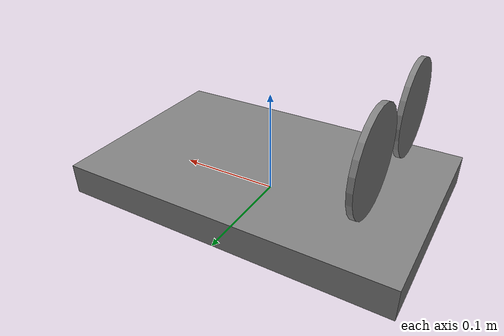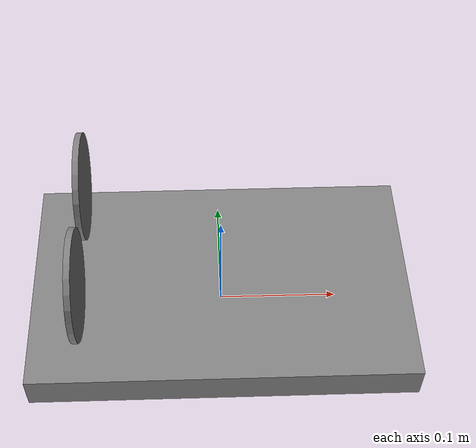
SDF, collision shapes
<?xml version="1.0"?>
<sdf version="1.9">
  <model name="hovercraft">
    <link name="base_link">
      <pose>0 0 0 0 0 0</pose>
      <inertial>
        <pose>0 0 0 0 0 0</pose>
        <mass>0.7</mass>
        <inertia>
          <ixx>0.002356667</ixx>
          <ixy>0</ixy>
          <ixz>0</ixz>
          <iyy>0.005996667</iyy>
          <iyz>0</iyz>
          <izz>0.008306667</izz>
        </inertia>
      </inertial>
      <collision name="collision">
        <pose>0 0 0.015 0 0 0</pose>
        <geometry>
          <box>
            <size>0.32 0.2 0.03</size>
          </box>
        </geometry>
        <surface>
          <friction>
            <ode>
              <mu>0.1</mu>
              <mu2>0.1</mu2>
            </ode>
          </friction>
        </surface>
      </collision>
      <visual name="visual">
        <pose>0 0 0 0 0 0</pose>
        <geometry>
        <mesh>
            <uri>models://hovercraft/meshes/hovercraft.dae</uri>
          </mesh>
        </geometry>
        <material>
          <ambient>0.5 0.5 0.5</ambient>
          <diffuse>0.5 0.5 0.5</diffuse>
          <specular>0.1 0.1 0.1</specular>
          <pbr>
            <metal>
              <metalness>0.2</metalness>
              <roughness>0.2</roughness>
            </metal>
          </pbr>
        </material>
      </visual>

      <sensor name="imu_sensor" type="imu">
        <pose degrees="true">0 0 0 180 0 0</pose>
        <always_on>1</always_on>
        <update_rate>1000.0</update_rate>
      </sensor>

    </link>

    <link name="motor_left_link">
      <pose relative_to="motor_left_joint">0 0 0.008 0 0 0</pose>
      <inertial>
        <pose>0 0 0 0 0 0</pose>
        <mass>0.025</mass>
        <inertia>
          <ixx>9.75e-06</ixx>
          <ixy>0</ixy>
          <ixz>0</ixz>
          <iyy>0.000166704</iyy>
          <iyz>0</iyz>
          <izz>0.000167604</izz>
        </inertia>
      </inertial>
      <collision name="prop_collision">
        <pose>0 0 0.0095 0 0 0</pose>
        <geometry>
          <cylinder>
            <radius>0.045</radius>
            <length>0.005</length>
          </cylinder>
        </geometry>
      </collision>
      <visual name="motor_visual">
        <geometry>
          <cylinder>
            <radius>0.01</radius>
            <length>0.01</length>
          </cylinder>
        </geometry>
        <material>
          <ambient>0.5 0.5 0.5</ambient>
          <diffuse>0.5 0.5 0.5</diffuse>
          <specular>0.5 0.5 0.5</specular>
          <pbr>
            <metal>
              <roughness>0.5</roughness>
              <metalness>0.4</metalness>
            </metal>
          </pbr>
        </material>
      </visual>
      <visual name="prop_visual">
        <pose>0 0 0.0095 0 0 0</pose>
        <geometry>
          <mesh>
            <scale>0.0007 0.0007 0.0007</scale>
            <uri>model://hovercraft/meshes/prop_triblade_5045_cw.dae</uri>
          </mesh>
        </geometry>
        <material>
          <ambient>0 1 0</ambient>
          <diffuse>0 1 0</diffuse>
          <specular>0.5 0.5 0.5</specular>
          <pbr>
            <metal>
              <roughness>0.5</roughness>
              <metalness>0.4</metalness>
            </metal>
          </pbr>
        </material>
      </visual>
    </link>
    <joint name="motor_left_joint" type="revolute">
      <pose relative_to="base_link" degrees="true">-0.132 0.0507 0.0935 0 90 0</pose>
      <parent>base_link</parent>
      <child>motor_left_link</child>
      <axis>
        <xyz>0 0 1</xyz>
        <limit>
          <lower>-1e16</lower>
          <upper>1e16</upper>
        </limit>
        <dynamics>
          <damping>0.002</damping>
        </dynamics>
        <use_parent_model_frame>1</use_parent_model_frame>
      </axis>
    </joint>

    <link name="motor_right_link">
      <pose relative_to="motor_right_joint">0 0 0.008 0 0 0</pose>
      <inertial>
        <pose>0 0 0 0 0 0</pose>
        <mass>0.025</mass>
        <inertia>
          <ixx>9.75e-06</ixx>
          <ixy>0</ixy>
          <ixz>0</ixz>
          <iyy>0.000166704</iyy>
          <iyz>0</iyz>
          <izz>0.000167604</izz>
        </inertia>
      </inertial>
      <collision name="prop_collision">
        <pose>0 0 0.0095 0 0 0</pose>
        <geometry>
          <cylinder>
            <radius>0.045</radius>
            <length>0.005</length>
          </cylinder>
        </geometry>
      </collision>
      <visual name="motor_visual">
        <geometry>
          <cylinder>
            <radius>0.01</radius>
            <length>0.01</length>
          </cylinder>
        </geometry>
        <material>
          <ambient>0.5 0.5 0.5</ambient>
          <diffuse>0.5 0.5 0.5</diffuse>
          <specular>0.5 0.5 0.5</specular>
          <pbr>
            <metal>
              <roughness>0.5</roughness>
              <metalness>0.4</metalness>
            </metal>
          </pbr>
        </material>
      </visual>
      <visual name="prop_visual">
        <pose>0 0 0.0095 0 0 0</pose>
        <geometry>
          <mesh>
            <scale>0.0007 0.0007 0.0007</scale>
            <uri>model://hovercraft/meshes/prop_triblade_5045_ccw.dae</uri>
          </mesh>
        </geometry>
        <material>
          <ambient>0 0 1</ambient>
          <diffuse>0 0 1</diffuse>
          <specular>0.5 0.5 0.5</specular>
          <pbr>
            <metal>
              <roughness>0.5</roughness>
              <metalness>0.4</metalness>
            </metal>
          </pbr>
        </material>
      </visual>
    </link>
    <joint name="motor_right_joint" type="revolute">
      <pose relative_to="base_link" degrees="true">-0.132 -0.0507 0.0935 0 90 0</pose>
      <parent>base_link</parent>
      <child>motor_right_link</child>
      <axis>
        <xyz>0 0 1</xyz>
        <limit>
          <lower>-1e16</lower>
          <upper>1e16</upper>
        </limit>
        <dynamics>
          <damping>0.002</damping>
        </dynamics>
        <use_parent_model_frame>1</use_parent_model_frame>
      </axis>
    </joint>

    <link name="motor_front_link">
      <pose relative_to="motor_front_joint">0 0 0.008 0 0 0</pose>
      <inertial>
        <pose>0 0 0 0 0 0</pose>
        <mass>0.025</mass>
        <inertia>
          <ixx>9.75e-06</ixx>
          <ixy>0</ixy>
          <ixz>0</ixz>
          <iyy>0.000166704</iyy>
          <iyz>0</iyz>
          <izz>0.000167604</izz>
        </inertia>
      </inertial>
      <collision name="prop_collision">
        <pose>0 0 0.0095 0 0 0</pose>
        <geometry>
          <cylinder>
            <radius>0.045</radius>
            <length>0.005</length>
          </cylinder>
        </geometry>
      </collision>
      <visual name="motor_visual">
        <geometry>
          <cylinder>
            <radius>0.01</radius>
            <length>0.01</length>
          </cylinder>
        </geometry>
        <material>
          <ambient>0.5 0.5 0.5</ambient>
          <diffuse>0.5 0.5 0.5</diffuse>
          <specular>0.5 0.5 0.5</specular>
          <pbr>
            <metal>
              <roughness>0.5</roughness>
              <metalness>0.4</metalness>
            </metal>
          </pbr>
        </material>
      </visual>
      <visual name="prop_visual">
        <pose>0 0 0.0095 0 0 0</pose>
        <geometry>
          <mesh>
            <scale>0.0007 0.0007 0.0007</scale>
            <uri>model://hovercraft/meshes/prop_triblade_5045_ccw.dae</uri>
          </mesh>
        </geometry>
        <material>
          <ambient>0 0 1</ambient>
          <diffuse>0 0 1</diffuse>
          <specular>0.5 0.5 0.5</specular>
          <pbr>
            <metal>
              <roughness>0.5</roughness>
              <metalness>0.4</metalness>
            </metal>
          </pbr>
        </material>
      </visual>
    </link>
    <joint name="motor_front_joint" type="revolute">
      <pose relative_to="base_link" degrees="true">0.067 0.0 0.009 0 0 0</pose>
      <parent>base_link</parent>
      <child>motor_front_link</child>
      <axis>
        <xyz>0 0 1</xyz>
        <limit>
          <lower>-1e16</lower>
          <upper>1e16</upper>
        </limit>
        <dynamics>
          <damping>0.002</damping>
        </dynamics>
        <use_parent_model_frame>1</use_parent_model_frame>
      </axis>
    </joint>

    <link name="motor_back_link">
      <pose relative_to="motor_back_joint">0 0 0.008 0 0 0</pose>
      <inertial>
        <pose>0 0 0 0 0 0</pose>
        <mass>0.025</mass>
        <inertia>
          <ixx>9.75e-06</ixx>
          <ixy>0</ixy>
          <ixz>0</ixz>
          <iyy>0.000166704</iyy>
          <iyz>0</iyz>
          <izz>0.000167604</izz>
        </inertia>
      </inertial>
      <collision name="prop_collision">
        <pose>0 0 0.0095 0 0 0</pose>
        <geometry>
          <cylinder>
            <radius>0.045</radius>
            <length>0.005</length>
          </cylinder>
        </geometry>
      </collision>
      <visual name="motor_visual">
        <geometry>
          <cylinder>
            <radius>0.01</radius>
            <length>0.01</length>
          </cylinder>
        </geometry>
        <material>
          <ambient>0.5 0.5 0.5</ambient>
          <diffuse>0.5 0.5 0.5</diffuse>
          <specular>0.5 0.5 0.5</specular>
          <pbr>
            <metal>
              <roughness>0.5</roughness>
              <metalness>0.4</metalness>
            </metal>
          </pbr>
        </material>
      </visual>
      <visual name="prop_visual">
        <pose>0 0 0.0095 0 0 0</pose>
        <geometry>
          <mesh>
            <scale>0.0007 0.0007 0.0007</scale>
            <uri>model://hovercraft/meshes/prop_triblade_5045_cw.dae</uri>
          </mesh>
        </geometry>
        <material>
          <ambient>0 1 0</ambient>
          <diffuse>0 1 0</diffuse>
          <specular>0.5 0.5 0.5</specular>
          <pbr>
            <metal>
              <roughness>0.5</roughness>
              <metalness>0.4</metalness>
            </metal>
          </pbr>
        </material>
      </visual>
    </link>
    <joint name="motor_back_joint" type="revolute">
      <pose relative_to="base_link" degrees="true">-0.057 0.0 0.009 0 0 0</pose>
      <parent>base_link</parent>
      <child>motor_back_link</child>
      <axis>
        <xyz>0 0 1</xyz>
        <limit>
          <lower>-1e16</lower>
          <upper>1e16</upper>
        </limit>
        <dynamics>
          <damping>0.002</damping>
        </dynamics>
        <use_parent_model_frame>1</use_parent_model_frame>
      </axis>
    </joint>

    <!-- plugins -->
    <plugin name="gz::sim::systems::JointStatePublisher"
      filename="gz-sim-joint-state-publisher-system">
    </plugin>

    <!-- prop_left (cw) lift-drag (ArduPilot throttle left) -->
    <plugin name="gz::sim::systems::LiftDrag"
      filename="gz-sim-lift-drag-system">
      <reversible>1</reversible>
      <a0>0.3</a0>
      <alpha_stall>1.4</alpha_stall>
      <cla>4.2500</cla>
      <cda>0.10</cda>
      <cma>0.00</cma>
      <cla_stall>-0.025</cla_stall>
      <cda_stall>0.0</cda_stall>
      <cma_stall>0.0</cma_stall>
      <area>0.0015</area>
      <air_density>1.2041</air_density>
      <cp>0.063 0 0</cp>
      <forward>0 -1 0</forward>
      <upward>0 0 1</upward>
      <link_name>motor_left_link</link_name>
    </plugin>
    <plugin name="gz::sim::systems::LiftDrag"
      filename="gz-sim-lift-drag-system">
      <reversible>1</reversible>
      <a0>0.3</a0>
      <alpha_stall>1.4</alpha_stall>
      <cla>4.2500</cla>
      <cda>0.10</cda>
      <cma>0.00</cma>
      <cla_stall>-0.025</cla_stall>
      <cda_stall>0.0</cda_stall>
      <cma_stall>0.0</cma_stall>
      <area>0.0015</area>
      <air_density>1.2041</air_density>
      <cp>-0.0315 0.0545596 0</cp>
      <forward>0.866025404 0.5 0</forward>
      <upward>0 0 1</upward>
      <link_name>motor_left_link</link_name>
    </plugin>
    <plugin name="gz::sim::systems::LiftDrag"
      filename="gz-sim-lift-drag-system">
      <reversible>1</reversible>
      <a0>0.3</a0>
      <alpha_stall>1.4</alpha_stall>
      <cla>4.2500</cla>
      <cda>0.10</cda>
      <cma>0.00</cma>
      <cla_stall>-0.025</cla_stall>
      <cda_stall>0.0</cda_stall>
      <cma_stall>0.0</cma_stall>
      <area>0.0015</area>
      <air_density>1.2041</air_density>
      <cp>-0.0315 -0.0545596 0</cp>
      <forward>-0.866025404 0.5 0</forward>
      <upward>0 0 1</upward>
      <link_name>motor_left_link</link_name>
    </plugin>

    <!-- prop_right (ccw) lift-drag (ArduPilot throttle right) -->
    <plugin name="gz::sim::systems::LiftDrag"
      filename="gz-sim-lift-drag-system">
      <reversible>1</reversible>
      <a0>0.3</a0>
      <alpha_stall>1.4</alpha_stall>
      <cla>4.2500</cla>
      <cda>0.10</cda>
      <cma>0.00</cma>
      <cla_stall>-0.025</cla_stall>
      <cda_stall>0.0</cda_stall>
      <cma_stall>0.0</cma_stall>
      <area>0.0015</area>
      <air_density>1.2041</air_density>
      <cp>0.063 0 0</cp>
      <forward>0 1 0</forward>
      <upward>0 0 1</upward>
      <link_name>motor_right_link</link_name>
    </plugin>
    <plugin name="gz::sim::systems::LiftDrag"
      filename="gz-sim-lift-drag-system">
      <reversible>1</reversible>
      <a0>0.3</a0>
      <alpha_stall>1.4</alpha_stall>
      <cla>4.2500</cla>
      <cda>0.10</cda>
      <cma>0.00</cma>
      <cla_stall>-0.025</cla_stall>
      <cda_stall>0.0</cda_stall>
      <cma_stall>0.0</cma_stall>
      <area>0.0015</area>
      <air_density>1.2041</air_density>
      <cp>-0.0315 0.0545596 0</cp>
      <forward>-0.866025404 -0.5 0</forward>
      <upward>0 0 1</upward>
      <link_name>motor_right_link</link_name>
    </plugin>
    <plugin name="gz::sim::systems::LiftDrag"
      filename="gz-sim-lift-drag-system">
      <reversible>1</reversible>
      <a0>0.3</a0>
      <alpha_stall>1.4</alpha_stall>
      <cla>4.2500</cla>
      <cda>0.10</cda>
      <cma>0.00</cma>
      <cla_stall>-0.025</cla_stall>
      <cda_stall>0.0</cda_stall>
      <cma_stall>0.0</cma_stall>
      <area>0.0015</area>
      <air_density>1.2041</air_density>
      <cp>-0.0315 -0.0545596 0</cp>
      <forward>0.866025404 -0.5 0</forward>
      <upward>0 0 1</upward>
      <link_name>motor_right_link</link_name>
    </plugin>

    <plugin name="ArduPilotPlugin"
      filename="ArduPilotPlugin">
      <!-- Connection -->
      <fdm_addr>127.0.0.1</fdm_addr>
      <fdm_port_in>9002</fdm_port_in>
      <connectionTimeoutMaxCount>5</connectionTimeoutMaxCount>
      <lock_step>1</lock_step>

      <!-- Transforms -->
      <modelXYZToAirplaneXForwardZDown degrees="true">0 0 0 180 0 0</modelXYZToAirplaneXForwardZDown>
      <gazeboXYZToNED degrees="true">0 0 0 180 0 90</gazeboXYZToNED>

      <!-- Sensors -->
      <imuName>base_link::imu_sensor</imuName>

      <!--
          SERVO1_FUNCTION   73 (ThrottleLeft)
       -->
      <control channel="0">
        <jointName>motor_left_joint</jointName>
        <multiplier>-1000</multiplier>
        <offset>-0.5</offset>
        <servo_min>1000</servo_min>
        <servo_max>2000</servo_max>
        <useForce>1</useForce>
        <type>VELOCITY</type>
        <p_gain>0.20</p_gain>
        <i_gain>0</i_gain>
        <d_gain>0</d_gain>
        <i_max>-1</i_max>
        <i_min>0</i_min>
        <cmd_max>2.5</cmd_max>
        <cmd_min>-2.5</cmd_min>
      </control>

      <!--
          SERVO2_FUNCTION   74 (ThrottleRight)
       -->
      <control channel="1">
        <jointName>motor_right_joint</jointName>
        <multiplier>1000</multiplier>
        <offset>-0.5</offset>
        <servo_min>1000</servo_min>
        <servo_max>2000</servo_max>
        <useForce>1</useForce>
        <type>VELOCITY</type>
        <p_gain>0.20</p_gain>
        <i_gain>0</i_gain>
        <d_gain>0</d_gain>
        <i_max>-1</i_max>
        <i_min>0</i_min>
        <cmd_max>2.5</cmd_max>
        <cmd_min>-2.5</cmd_min>
      </control>

      <!--
          SERVO3_FUNCTION   56 (RCIN8)
       -->
      <control channel="2">
        <jointName>motor_front_joint</jointName>
        <multiplier>1</multiplier>
        <offset>0</offset>
        <servo_min>1000</servo_min>
        <servo_max>2000</servo_max>
        <useForce>1</useForce>
        <type>VELOCITY</type>
        <p_gain>0.20</p_gain>
        <i_gain>0</i_gain>
        <d_gain>0</d_gain>
        <i_max>-1</i_max>
        <i_min>0</i_min>
        <cmd_max>2.5</cmd_max>
        <cmd_min>-2.5</cmd_min>
      </control>

      <!--
          SERVO4_FUNCTION   56 (RCIN8)
       -->
      <control channel="3">
        <jointName>motor_back_joint</jointName>
        <multiplier>-1</multiplier>
        <offset>0</offset>
        <servo_min>1000</servo_min>
        <servo_max>2000</servo_max>
        <useForce>1</useForce>
        <type>VELOCITY</type>
        <p_gain>0.20</p_gain>
        <i_gain>0</i_gain>
        <d_gain>0</d_gain>
        <i_max>-1</i_max>
        <i_min>0</i_min>
        <cmd_max>2.5</cmd_max>
        <cmd_min>-2.5</cmd_min>
      </control>

    </plugin>

  </model>
</sdf>
